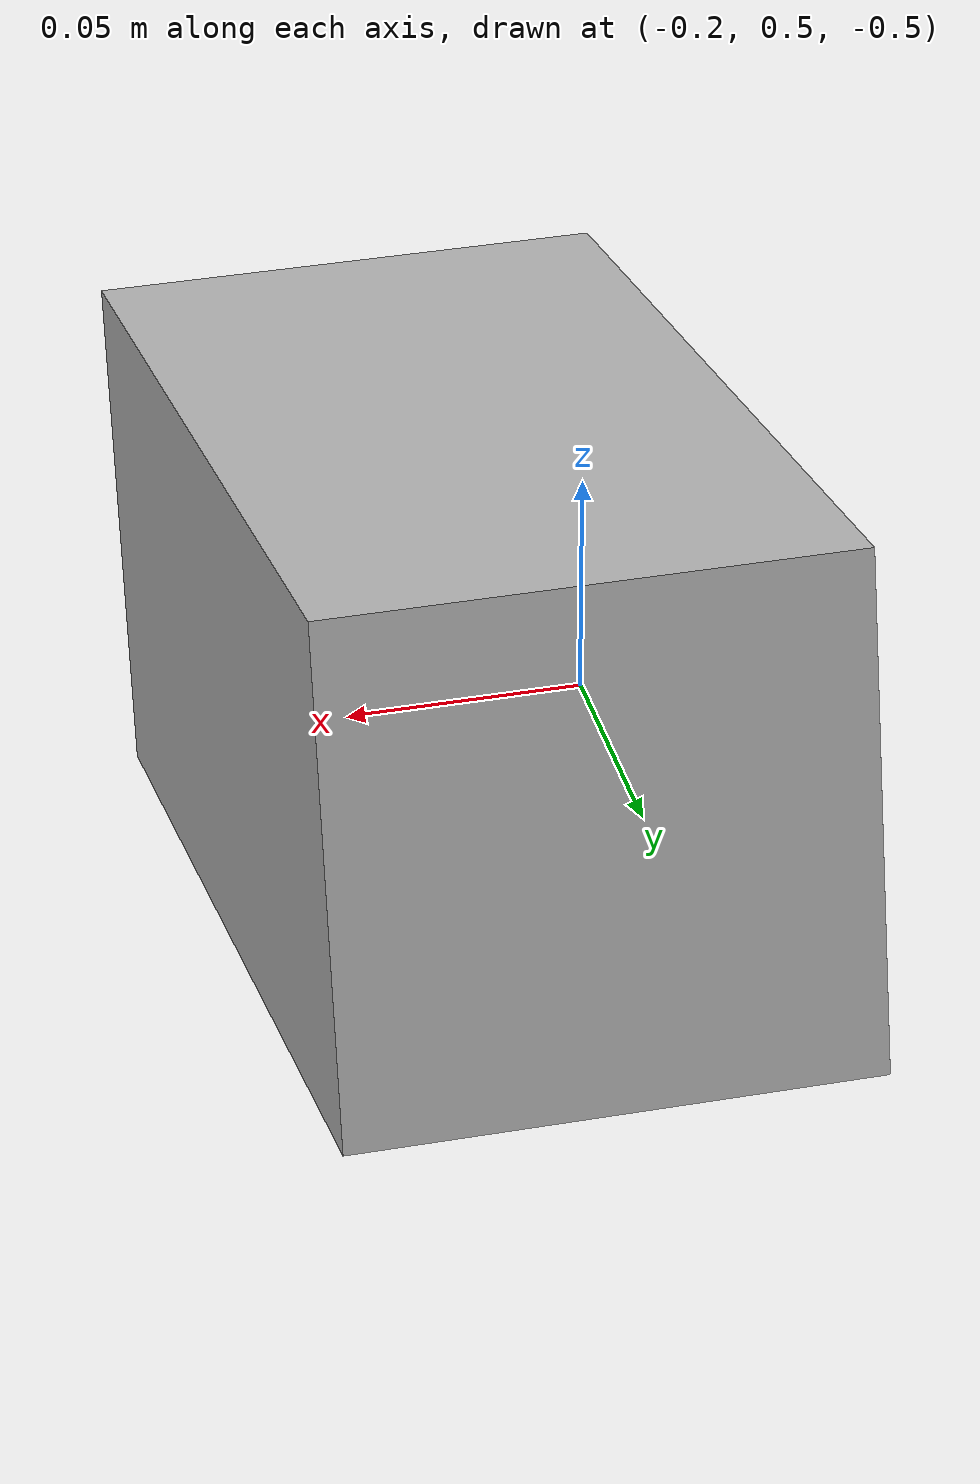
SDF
<?xml version="1.0" ?>
<sdf version="1.4">
  <world name="default">
    <include>
      <uri>model://ground_plane</uri>
    </include>

    <include>
      <uri>model://sun</uri>
    </include>

    <include>
      <uri>model://IPON</uri>
      <pose>0 0 1 0 -0.22 1.57</pose>
    </include>
  </world>
</sdf>

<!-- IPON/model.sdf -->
<sdf version="1.4">
    <model name="IPON">
      <pose>0 0 0.5 0 0 0</pose>
      <link name="link">
      <gravity>0</gravity>

        <visual name="visual">
	<pose>0 0 0 0 0 0 </pose>
        <geometry>
	<cylinder>
	 <radius>.03</radius>
	 <length>.01</length>
	</cylinder>
	</geometry>
	<material>
		<ambient>15 74 47 1</ambient>
		<diffuse>15 74 47 1</diffuse>
		<specular>0.1 0.1 0.1 1</specular>
		<emissive>0 0 0 0</emissive>
	</material>
        </visual>

        <visual name="visual">
	<pose>0.266 0.155 -1.523 0 0 0 </pose>
        <geometry>
	<box>
	 <size>.2 .1 .1</size>
	</box>
	</geometry>
        </visual>

      <sensor name='imu_component' type='imu'>
	 <pose>0.0 0.0 0.0 0.0 0.0 0.0</pose>
	<imu>
	  <topic>ODED</topic>
	</imu>
	<always_on>1</always_on>
	<update_rate>30</update_rate>
	<visualize>1</visualize>

      </sensor>

      </link>

    <plugin name="IPON" filename="libIPON.so">
      <gps_ant_link_name>IPON::link</gps_ant_link_name>
      <imu_unit_name>imu_component</imu_unit_name>
      <start_latitude>32.0111448</start_latitude>
      <start_longitude>34.91200118</start_longitude>
      <frequency>100</frequency>
      <Delay>0.02</Delay>

    </plugin>
    </model>
</sdf>
